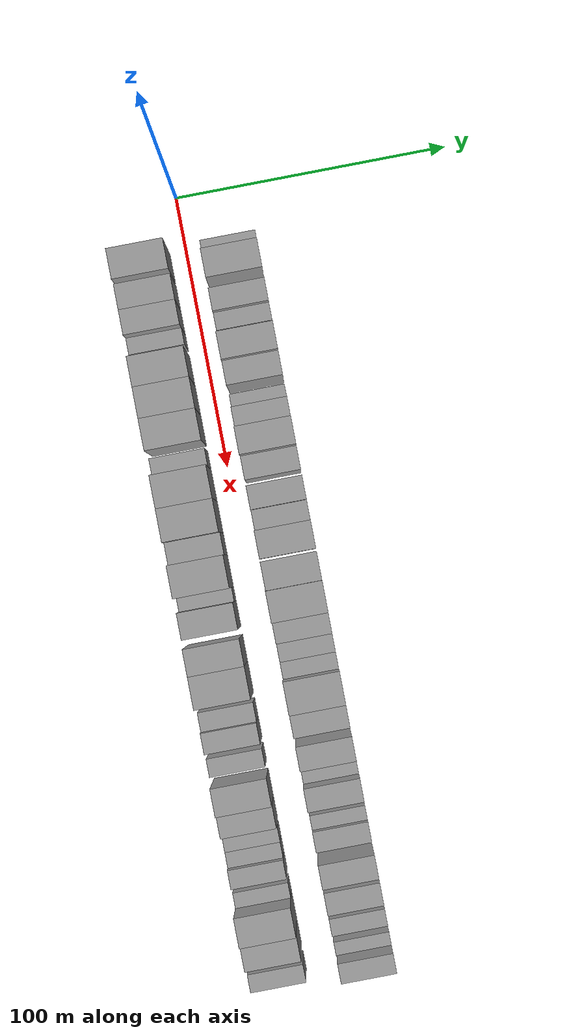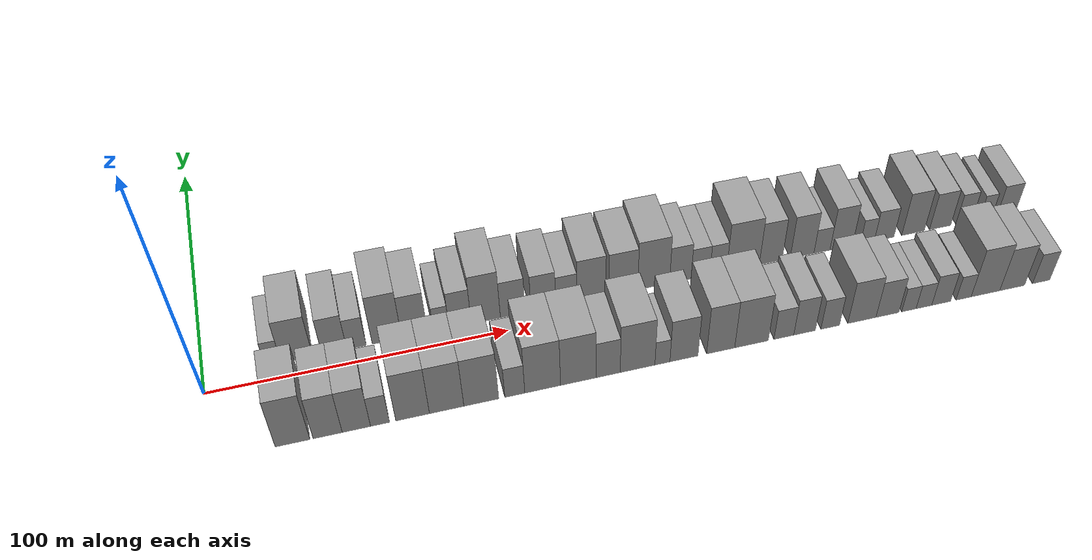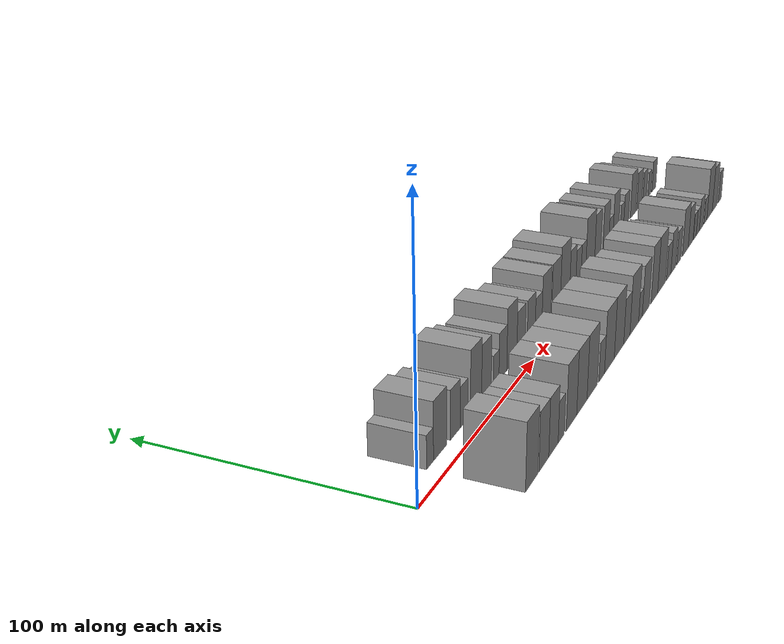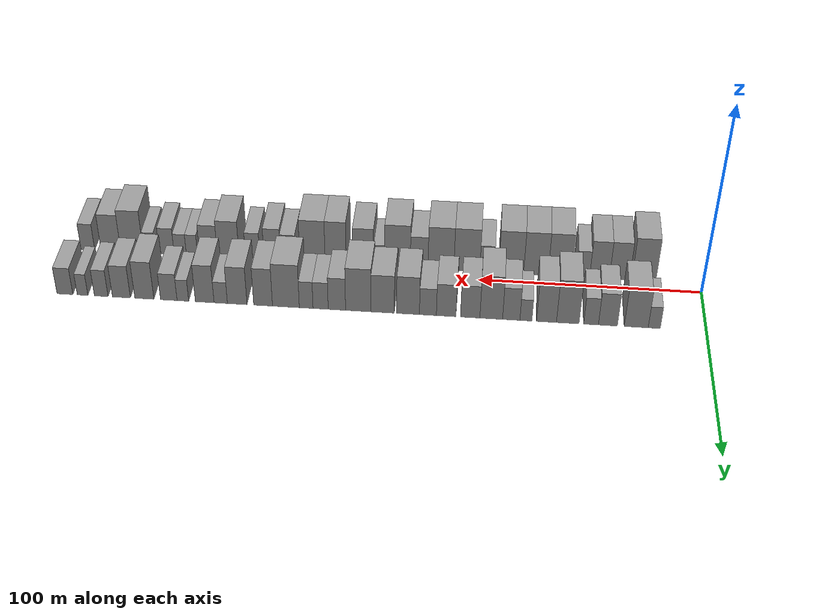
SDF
<sdf version="1.6">
 <world name="default">
  <scene>
   <sky><clouds><speed>12</speed></clouds></sky>
   <ambient>0.4 0.4 0.4 1</ambient>
   <background>0.7 0.7 0.7 1</background>
   <shadows>1</shadows>
  </scene>
  <gravity>0 0 -9.8066</gravity>
  <magnetic_field>6e-06 2.3e-05 -4.2e-05</magnetic_field>
  <physics default="0" name="default_physics" type="ode">
   <ode>
    <solver>
     <type>quick</type>
     <iters>10</iters>
     <sor>1.0</sor>
     <use_dynamic_moi_rescaling>0</use_dynamic_moi_rescaling>
    </solver>
    <constraints>
     <cfm>0</cfm>
     <erp>0.2</erp>
     <contact_max_correcting_vel>100</contact_max_correcting_vel>
     <contact_surface_layer>0.001</contact_surface_layer>
    </constraints>
   </ode>
   <max_step_size>0.004</max_step_size>
   <real_time_factor>1</real_time_factor>
   <real_time_update_rate>250</real_time_update_rate>
  </physics>
  <light name="sun" type="directional">
   <pose>0 0 10 0 0 0</pose>
   <diffuse>0.8 0.8 0.8 1</diffuse>
   <specular>0.2 0.2 0.2 1</specular>
   <attenuation>
    <range>1000</range>
    <constant>0.9</constant>
    <linear>0.01</linear>
    <quadratic>0.001</quadratic>
   </attenuation>
   <direction>-0.5 0.1 -0.9</direction>
  </light>
  <model name="building_1">
   <static>1</static>
   <pose>22.6084 16.0000 0 0.000000 0.000000 1.570796</pose>
   <link name="link">
    <pose>0 0 6.00 0 0 0</pose>
    <collision name="collision"><geometry><box><size>20.0000 5.2167 12.0000</size></box></geometry></collision>
    <visual name="visual">
     <cast_shadows>0</cast_shadows>
     <geometry><box><size>20.0000 5.2167 12.0000</size></box></geometry>
     <material>
      <script>
       <uri>model://grey_wall/materials/scripts</uri>
       <uri>model://grey_wall/materials/textures</uri>
       <name>vrc/grey_wall</name>
      </script>
     </material>
    </visual>
   </link>
  </model>
  <model name="building_2">
   <static>1</static>
   <pose>30.3901 16.0000 0 0.000000 0.000000 1.570796</pose>
   <link name="link">
    <pose>0 0 10.50 0 0 0</pose>
    <collision name="collision"><geometry><box><size>20.0000 10.3469 21.0000</size></box></geometry></collision>
    <visual name="visual">
     <cast_shadows>0</cast_shadows>
     <geometry><box><size>20.0000 10.3469 21.0000</size></box></geometry>
     <material>
      <script>
       <uri>model://grey_wall/materials/scripts</uri>
       <uri>model://grey_wall/materials/textures</uri>
       <name>vrc/grey_wall</name>
      </script>
     </material>
    </visual>
   </link>
  </model>
  <model name="building_3">
   <static>1</static>
   <pose>42.6736 16.0000 0 0.000000 0.000000 1.570796</pose>
   <link name="link">
    <pose>0 0 9.00 0 0 0</pose>
    <collision name="collision"><geometry><box><size>20.0000 8.2200 18.0000</size></box></geometry></collision>
    <visual name="visual">
     <cast_shadows>0</cast_shadows>
     <geometry><box><size>20.0000 8.2200 18.0000</size></box></geometry>
     <material>
      <script>
       <uri>model://grey_wall/materials/scripts</uri>
       <uri>model://grey_wall/materials/textures</uri>
       <name>vrc/grey_wall</name>
      </script>
     </material>
    </visual>
   </link>
  </model>
  <model name="building_4">
   <static>1</static>
   <pose>49.9947 16.0000 0 0.000000 0.000000 1.570796</pose>
   <link name="link">
    <pose>0 0 7.50 0 0 0</pose>
    <collision name="collision"><geometry><box><size>20.0000 6.4224 15.0000</size></box></geometry></collision>
    <visual name="visual">
     <cast_shadows>0</cast_shadows>
     <geometry><box><size>20.0000 6.4224 15.0000</size></box></geometry>
     <material>
      <script>
       <uri>model://grey_wall/materials/scripts</uri>
       <uri>model://grey_wall/materials/textures</uri>
       <name>vrc/grey_wall</name>
      </script>
     </material>
    </visual>
   </link>
  </model>
  <model name="building_5">
   <static>1</static>
   <pose>60.1211 16.0000 0 0.000000 0.000000 1.570796</pose>
   <link name="link">
    <pose>0 0 12.00 0 0 0</pose>
    <collision name="collision"><geometry><box><size>20.0000 9.8304 24.0000</size></box></geometry></collision>
    <visual name="visual">
     <cast_shadows>0</cast_shadows>
     <geometry><box><size>20.0000 9.8304 24.0000</size></box></geometry>
     <material>
      <script>
       <uri>model://grey_wall/materials/scripts</uri>
       <uri>model://grey_wall/materials/textures</uri>
       <name>vrc/grey_wall</name>
      </script>
     </material>
    </visual>
   </link>
  </model>
  <model name="building_6">
   <static>1</static>
   <pose>69.3742 16.0000 0 0.000000 0.000000 1.570796</pose>
   <link name="link">
    <pose>0 0 10.50 0 0 0</pose>
    <collision name="collision"><geometry><box><size>20.0000 8.6758 21.0000</size></box></geometry></collision>
    <visual name="visual">
     <cast_shadows>0</cast_shadows>
     <geometry><box><size>20.0000 8.6758 21.0000</size></box></geometry>
     <material>
      <script>
       <uri>model://grey_wall/materials/scripts</uri>
       <uri>model://grey_wall/materials/textures</uri>
       <name>vrc/grey_wall</name>
      </script>
     </material>
    </visual>
   </link>
  </model>
  <model name="building_7">
   <static>1</static>
   <pose>78.3441 16.0000 0 0.000000 0.000000 1.570796</pose>
   <link name="link">
    <pose>0 0 6.00 0 0 0</pose>
    <collision name="collision"><geometry><box><size>20.0000 5.2640 12.0000</size></box></geometry></collision>
    <visual name="visual">
     <cast_shadows>0</cast_shadows>
     <geometry><box><size>20.0000 5.2640 12.0000</size></box></geometry>
     <material>
      <script>
       <uri>model://grey_wall/materials/scripts</uri>
       <uri>model://grey_wall/materials/textures</uri>
       <name>vrc/grey_wall</name>
      </script>
     </material>
    </visual>
   </link>
  </model>
  <model name="building_8">
   <static>1</static>
   <pose>84.7707 16.0000 0 0.000000 0.000000 1.570796</pose>
   <link name="link">
    <pose>0 0 9.00 0 0 0</pose>
    <collision name="collision"><geometry><box><size>20.0000 7.5891 18.0000</size></box></geometry></collision>
    <visual name="visual">
     <cast_shadows>0</cast_shadows>
     <geometry><box><size>20.0000 7.5891 18.0000</size></box></geometry>
     <material>
      <script>
       <uri>model://grey_wall/materials/scripts</uri>
       <uri>model://grey_wall/materials/textures</uri>
       <name>vrc/grey_wall</name>
      </script>
     </material>
    </visual>
   </link>
  </model>
  <model name="building_9">
   <static>1</static>
   <pose>93.5377 16.0000 0 0.000000 0.000000 1.570796</pose>
   <link name="link">
    <pose>0 0 12.00 0 0 0</pose>
    <collision name="collision"><geometry><box><size>20.0000 9.9450 24.0000</size></box></geometry></collision>
    <visual name="visual">
     <cast_shadows>0</cast_shadows>
     <geometry><box><size>20.0000 9.9450 24.0000</size></box></geometry>
     <material>
      <script>
       <uri>model://grey_wall/materials/scripts</uri>
       <uri>model://grey_wall/materials/textures</uri>
       <name>vrc/grey_wall</name>
      </script>
     </material>
    </visual>
   </link>
  </model>
  <model name="building_10">
   <static>1</static>
   <pose>102.7729 16.0000 0 0.000000 0.000000 1.570796</pose>
   <link name="link">
    <pose>0 0 9.00 0 0 0</pose>
    <collision name="collision"><geometry><box><size>20.0000 8.5254 18.0000</size></box></geometry></collision>
    <visual name="visual">
     <cast_shadows>0</cast_shadows>
     <geometry><box><size>20.0000 8.5254 18.0000</size></box></geometry>
     <material>
      <script>
       <uri>model://grey_wall/materials/scripts</uri>
       <uri>model://grey_wall/materials/textures</uri>
       <name>vrc/grey_wall</name>
      </script>
     </material>
    </visual>
   </link>
  </model>
  <model name="building_11">
   <static>1</static>
   <pose>113.3441 16.0000 0 0.000000 0.000000 1.570796</pose>
   <link name="link">
    <pose>0 0 9.00 0 0 0</pose>
    <collision name="collision"><geometry><box><size>20.0000 8.6171 18.0000</size></box></geometry></collision>
    <visual name="visual">
     <cast_shadows>0</cast_shadows>
     <geometry><box><size>20.0000 8.6171 18.0000</size></box></geometry>
     <material>
      <script>
       <uri>model://grey_wall/materials/scripts</uri>
       <uri>model://grey_wall/materials/textures</uri>
       <name>vrc/grey_wall</name>
      </script>
     </material>
    </visual>
   </link>
  </model>
  <model name="building_12">
   <static>1</static>
   <pose>121.3800 16.0000 0 0.000000 0.000000 1.570796</pose>
   <link name="link">
    <pose>0 0 7.50 0 0 0</pose>
    <collision name="collision"><geometry><box><size>20.0000 7.4546 15.0000</size></box></geometry></collision>
    <visual name="visual">
     <cast_shadows>0</cast_shadows>
     <geometry><box><size>20.0000 7.4546 15.0000</size></box></geometry>
     <material>
      <script>
       <uri>model://grey_wall/materials/scripts</uri>
       <uri>model://grey_wall/materials/textures</uri>
       <name>vrc/grey_wall</name>
      </script>
     </material>
    </visual>
   </link>
  </model>
  <model name="building_13">
   <static>1</static>
   <pose>130.1584 16.0000 0 0.000000 0.000000 1.570796</pose>
   <link name="link">
    <pose>0 0 10.50 0 0 0</pose>
    <collision name="collision"><geometry><box><size>20.0000 10.1021 21.0000</size></box></geometry></collision>
    <visual name="visual">
     <cast_shadows>0</cast_shadows>
     <geometry><box><size>20.0000 10.1021 21.0000</size></box></geometry>
     <material>
      <script>
       <uri>model://grey_wall/materials/scripts</uri>
       <uri>model://grey_wall/materials/textures</uri>
       <name>vrc/grey_wall</name>
      </script>
     </material>
    </visual>
   </link>
  </model>
  <model name="building_14">
   <static>1</static>
   <pose>141.3422 16.0000 0 0.000000 0.000000 1.570796</pose>
   <link name="link">
    <pose>0 0 10.50 0 0 0</pose>
    <collision name="collision"><geometry><box><size>20.0000 10.2656 21.0000</size></box></geometry></collision>
    <visual name="visual">
     <cast_shadows>0</cast_shadows>
     <geometry><box><size>20.0000 10.2656 21.0000</size></box></geometry>
     <material>
      <script>
       <uri>model://grey_wall/materials/scripts</uri>
       <uri>model://grey_wall/materials/textures</uri>
       <name>vrc/grey_wall</name>
      </script>
     </material>
    </visual>
   </link>
  </model>
  <model name="building_15">
   <static>1</static>
   <pose>152.1491 16.0000 0 0.000000 0.000000 1.570796</pose>
   <link name="link">
    <pose>0 0 12.00 0 0 0</pose>
    <collision name="collision"><geometry><box><size>20.0000 11.3482 24.0000</size></box></geometry></collision>
    <visual name="visual">
     <cast_shadows>0</cast_shadows>
     <geometry><box><size>20.0000 11.3482 24.0000</size></box></geometry>
     <material>
      <script>
       <uri>model://grey_wall/materials/scripts</uri>
       <uri>model://grey_wall/materials/textures</uri>
       <name>vrc/grey_wall</name>
      </script>
     </material>
    </visual>
   </link>
  </model>
  <model name="building_16">
   <static>1</static>
   <pose>161.6808 16.0000 0 0.000000 0.000000 1.570796</pose>
   <link name="link">
    <pose>0 0 9.00 0 0 0</pose>
    <collision name="collision"><geometry><box><size>20.0000 7.7151 18.0000</size></box></geometry></collision>
    <visual name="visual">
     <cast_shadows>0</cast_shadows>
     <geometry><box><size>20.0000 7.7151 18.0000</size></box></geometry>
     <material>
      <script>
       <uri>model://grey_wall/materials/scripts</uri>
       <uri>model://grey_wall/materials/textures</uri>
       <name>vrc/grey_wall</name>
      </script>
     </material>
    </visual>
   </link>
  </model>
  <model name="building_17">
   <static>1</static>
   <pose>168.9210 16.0000 0 0.000000 0.000000 1.570796</pose>
   <link name="link">
    <pose>0 0 7.50 0 0 0</pose>
    <collision name="collision"><geometry><box><size>20.0000 6.7653 15.0000</size></box></geometry></collision>
    <visual name="visual">
     <cast_shadows>0</cast_shadows>
     <geometry><box><size>20.0000 6.7653 15.0000</size></box></geometry>
     <material>
      <script>
       <uri>model://grey_wall/materials/scripts</uri>
       <uri>model://grey_wall/materials/textures</uri>
       <name>vrc/grey_wall</name>
      </script>
     </material>
    </visual>
   </link>
  </model>
  <model name="building_18">
   <static>1</static>
   <pose>175.3522 16.0000 0 0.000000 0.000000 1.570796</pose>
   <link name="link">
    <pose>0 0 7.50 0 0 0</pose>
    <collision name="collision"><geometry><box><size>20.0000 6.0972 15.0000</size></box></geometry></collision>
    <visual name="visual">
     <cast_shadows>0</cast_shadows>
     <geometry><box><size>20.0000 6.0972 15.0000</size></box></geometry>
     <material>
      <script>
       <uri>model://grey_wall/materials/scripts</uri>
       <uri>model://grey_wall/materials/textures</uri>
       <name>vrc/grey_wall</name>
      </script>
     </material>
    </visual>
   </link>
  </model>
  <model name="building_19">
   <static>1</static>
   <pose>184.3921 16.0000 0 0.000000 0.000000 1.570796</pose>
   <link name="link">
    <pose>0 0 12.00 0 0 0</pose>
    <collision name="collision"><geometry><box><size>20.0000 11.9827 24.0000</size></box></geometry></collision>
    <visual name="visual">
     <cast_shadows>0</cast_shadows>
     <geometry><box><size>20.0000 11.9827 24.0000</size></box></geometry>
     <material>
      <script>
       <uri>model://grey_wall/materials/scripts</uri>
       <uri>model://grey_wall/materials/textures</uri>
       <name>vrc/grey_wall</name>
      </script>
     </material>
    </visual>
   </link>
  </model>
  <model name="building_20">
   <static>1</static>
   <pose>194.5859 16.0000 0 0.000000 0.000000 1.570796</pose>
   <link name="link">
    <pose>0 0 10.50 0 0 0</pose>
    <collision name="collision"><geometry><box><size>20.0000 8.4049 21.0000</size></box></geometry></collision>
    <visual name="visual">
     <cast_shadows>0</cast_shadows>
     <geometry><box><size>20.0000 8.4049 21.0000</size></box></geometry>
     <material>
      <script>
       <uri>model://grey_wall/materials/scripts</uri>
       <uri>model://grey_wall/materials/textures</uri>
       <name>vrc/grey_wall</name>
      </script>
     </material>
    </visual>
   </link>
  </model>
  <model name="building_21">
   <static>1</static>
   <pose>206.1869 16.0000 0 0.000000 0.000000 1.570796</pose>
   <link name="link">
    <pose>0 0 10.50 0 0 0</pose>
    <collision name="collision"><geometry><box><size>20.0000 8.7970 21.0000</size></box></geometry></collision>
    <visual name="visual">
     <cast_shadows>0</cast_shadows>
     <geometry><box><size>20.0000 8.7970 21.0000</size></box></geometry>
     <material>
      <script>
       <uri>model://grey_wall/materials/scripts</uri>
       <uri>model://grey_wall/materials/textures</uri>
       <name>vrc/grey_wall</name>
      </script>
     </material>
    </visual>
   </link>
  </model>
  <model name="building_22">
   <static>1</static>
   <pose>213.5829 16.0000 0 0.000000 0.000000 1.570796</pose>
   <link name="link">
    <pose>0 0 6.00 0 0 0</pose>
    <collision name="collision"><geometry><box><size>20.0000 5.9951 12.0000</size></box></geometry></collision>
    <visual name="visual">
     <cast_shadows>0</cast_shadows>
     <geometry><box><size>20.0000 5.9951 12.0000</size></box></geometry>
     <material>
      <script>
       <uri>model://grey_wall/materials/scripts</uri>
       <uri>model://grey_wall/materials/textures</uri>
       <name>vrc/grey_wall</name>
      </script>
     </material>
    </visual>
   </link>
  </model>
  <model name="building_23">
   <static>1</static>
   <pose>220.7910 16.0000 0 0.000000 0.000000 1.570796</pose>
   <link name="link">
    <pose>0 0 10.50 0 0 0</pose>
    <collision name="collision"><geometry><box><size>20.0000 8.4211 21.0000</size></box></geometry></collision>
    <visual name="visual">
     <cast_shadows>0</cast_shadows>
     <geometry><box><size>20.0000 8.4211 21.0000</size></box></geometry>
     <material>
      <script>
       <uri>model://grey_wall/materials/scripts</uri>
       <uri>model://grey_wall/materials/textures</uri>
       <name>vrc/grey_wall</name>
      </script>
     </material>
    </visual>
   </link>
  </model>
  <model name="building_24">
   <static>1</static>
   <pose>230.6266 16.0000 0 0.000000 0.000000 1.570796</pose>
   <link name="link">
    <pose>0 0 6.00 0 0 0</pose>
    <collision name="collision"><geometry><box><size>20.0000 5.2502 12.0000</size></box></geometry></collision>
    <visual name="visual">
     <cast_shadows>0</cast_shadows>
     <geometry><box><size>20.0000 5.2502 12.0000</size></box></geometry>
     <material>
      <script>
       <uri>model://grey_wall/materials/scripts</uri>
       <uri>model://grey_wall/materials/textures</uri>
       <name>vrc/grey_wall</name>
      </script>
     </material>
    </visual>
   </link>
  </model>
  <model name="building_25">
   <static>1</static>
   <pose>236.9846 16.0000 0 0.000000 0.000000 1.570796</pose>
   <link name="link">
    <pose>0 0 7.50 0 0 0</pose>
    <collision name="collision"><geometry><box><size>20.0000 7.4658 15.0000</size></box></geometry></collision>
    <visual name="visual">
     <cast_shadows>0</cast_shadows>
     <geometry><box><size>20.0000 7.4658 15.0000</size></box></geometry>
     <material>
      <script>
       <uri>model://grey_wall/materials/scripts</uri>
       <uri>model://grey_wall/materials/textures</uri>
       <name>vrc/grey_wall</name>
      </script>
     </material>
    </visual>
   </link>
  </model>
  <model name="building_26">
   <static>1</static>
   <pose>248.0401 16.0000 0 0.000000 0.000000 1.570796</pose>
   <link name="link">
    <pose>0 0 10.50 0 0 0</pose>
    <collision name="collision"><geometry><box><size>20.0000 8.6451 21.0000</size></box></geometry></collision>
    <visual name="visual">
     <cast_shadows>0</cast_shadows>
     <geometry><box><size>20.0000 8.6451 21.0000</size></box></geometry>
     <material>
      <script>
       <uri>model://grey_wall/materials/scripts</uri>
       <uri>model://grey_wall/materials/textures</uri>
       <name>vrc/grey_wall</name>
      </script>
     </material>
    </visual>
   </link>
  </model>
  <model name="building_27">
   <static>1</static>
   <pose>258.4381 16.0000 0 0.000000 0.000000 1.570796</pose>
   <link name="link">
    <pose>0 0 9.00 0 0 0</pose>
    <collision name="collision"><geometry><box><size>20.0000 8.1509 18.0000</size></box></geometry></collision>
    <visual name="visual">
     <cast_shadows>0</cast_shadows>
     <geometry><box><size>20.0000 8.1509 18.0000</size></box></geometry>
     <material>
      <script>
       <uri>model://grey_wall/materials/scripts</uri>
       <uri>model://grey_wall/materials/textures</uri>
       <name>vrc/grey_wall</name>
      </script>
     </material>
    </visual>
   </link>
  </model>
  <model name="building_28">
   <static>1</static>
   <pose>267.6070 16.0000 0 0.000000 0.000000 1.570796</pose>
   <link name="link">
    <pose>0 0 7.50 0 0 0</pose>
    <collision name="collision"><geometry><box><size>20.0000 6.1869 15.0000</size></box></geometry></collision>
    <visual name="visual">
     <cast_shadows>0</cast_shadows>
     <geometry><box><size>20.0000 6.1869 15.0000</size></box></geometry>
     <material>
      <script>
       <uri>model://grey_wall/materials/scripts</uri>
       <uri>model://grey_wall/materials/textures</uri>
       <name>vrc/grey_wall</name>
      </script>
     </material>
    </visual>
   </link>
  </model>
  <model name="building_29">
   <static>1</static>
   <pose>276.1133 16.0000 0 0.000000 0.000000 1.570796</pose>
   <link name="link">
    <pose>0 0 6.00 0 0 0</pose>
    <collision name="collision"><geometry><box><size>20.0000 4.8258 12.0000</size></box></geometry></collision>
    <visual name="visual">
     <cast_shadows>0</cast_shadows>
     <geometry><box><size>20.0000 4.8258 12.0000</size></box></geometry>
     <material>
      <script>
       <uri>model://grey_wall/materials/scripts</uri>
       <uri>model://grey_wall/materials/textures</uri>
       <name>vrc/grey_wall</name>
      </script>
     </material>
    </visual>
   </link>
  </model>
  <model name="building_30">
   <static>1</static>
   <pose>284.1362 16.0000 0 0.000000 0.000000 1.570796</pose>
   <link name="link">
    <pose>0 0 7.50 0 0 0</pose>
    <collision name="collision"><geometry><box><size>20.0000 7.2200 15.0000</size></box></geometry></collision>
    <visual name="visual">
     <cast_shadows>0</cast_shadows>
     <geometry><box><size>20.0000 7.2200 15.0000</size></box></geometry>
     <material>
      <script>
       <uri>model://grey_wall/materials/scripts</uri>
       <uri>model://grey_wall/materials/textures</uri>
       <name>vrc/grey_wall</name>
      </script>
     </material>
    </visual>
   </link>
  </model>
  <model name="building_31">
   <static>1</static>
   <pose>25.3944 -16.0000 0 0.000000 0.000000 1.570796</pose>
   <link name="link">
    <pose>0 0 12.00 0 0 0</pose>
    <collision name="collision"><geometry><box><size>20.0000 10.7888 24.0000</size></box></geometry></collision>
    <visual name="visual">
     <cast_shadows>0</cast_shadows>
     <geometry><box><size>20.0000 10.7888 24.0000</size></box></geometry>
     <material>
      <script>
       <uri>model://grey_wall/materials/scripts</uri>
       <uri>model://grey_wall/materials/textures</uri>
       <name>vrc/grey_wall</name>
      </script>
     </material>
    </visual>
   </link>
  </model>
  <model name="building_32">
   <static>1</static>
   <pose>36.3496 -16.0000 0 0.000000 0.000000 1.570796</pose>
   <link name="link">
    <pose>0 0 10.50 0 0 0</pose>
    <collision name="collision"><geometry><box><size>20.0000 9.1216 21.0000</size></box></geometry></collision>
    <visual name="visual">
     <cast_shadows>0</cast_shadows>
     <geometry><box><size>20.0000 9.1216 21.0000</size></box></geometry>
     <material>
      <script>
       <uri>model://grey_wall/materials/scripts</uri>
       <uri>model://grey_wall/materials/textures</uri>
       <name>vrc/grey_wall</name>
      </script>
     </material>
    </visual>
   </link>
  </model>
  <model name="building_33">
   <static>1</static>
   <pose>45.3806 -16.0000 0 0.000000 0.000000 1.570796</pose>
   <link name="link">
    <pose>0 0 10.50 0 0 0</pose>
    <collision name="collision"><geometry><box><size>20.0000 8.9404 21.0000</size></box></geometry></collision>
    <visual name="visual">
     <cast_shadows>0</cast_shadows>
     <geometry><box><size>20.0000 8.9404 21.0000</size></box></geometry>
     <material>
      <script>
       <uri>model://grey_wall/materials/scripts</uri>
       <uri>model://grey_wall/materials/textures</uri>
       <name>vrc/grey_wall</name>
      </script>
     </material>
    </visual>
   </link>
  </model>
  <model name="building_34">
   <static>1</static>
   <pose>52.8596 -16.0000 0 0.000000 0.000000 1.570796</pose>
   <link name="link">
    <pose>0 0 7.50 0 0 0</pose>
    <collision name="collision"><geometry><box><size>20.0000 6.0176 15.0000</size></box></geometry></collision>
    <visual name="visual">
     <cast_shadows>0</cast_shadows>
     <geometry><box><size>20.0000 6.0176 15.0000</size></box></geometry>
     <material>
      <script>
       <uri>model://grey_wall/materials/scripts</uri>
       <uri>model://grey_wall/materials/textures</uri>
       <name>vrc/grey_wall</name>
      </script>
     </material>
    </visual>
   </link>
  </model>
  <model name="building_35">
   <static>1</static>
   <pose>63.2559 -16.0000 0 0.000000 0.000000 1.570796</pose>
   <link name="link">
    <pose>0 0 12.00 0 0 0</pose>
    <collision name="collision"><geometry><box><size>20.0000 10.7749 24.0000</size></box></geometry></collision>
    <visual name="visual">
     <cast_shadows>0</cast_shadows>
     <geometry><box><size>20.0000 10.7749 24.0000</size></box></geometry>
     <material>
      <script>
       <uri>model://grey_wall/materials/scripts</uri>
       <uri>model://grey_wall/materials/textures</uri>
       <name>vrc/grey_wall</name>
      </script>
     </material>
    </visual>
   </link>
  </model>
  <model name="building_36">
   <static>1</static>
   <pose>74.1902 -16.0000 0 0.000000 0.000000 1.570796</pose>
   <link name="link">
    <pose>0 0 12.00 0 0 0</pose>
    <collision name="collision"><geometry><box><size>20.0000 11.0937 24.0000</size></box></geometry></collision>
    <visual name="visual">
     <cast_shadows>0</cast_shadows>
     <geometry><box><size>20.0000 11.0937 24.0000</size></box></geometry>
     <material>
      <script>
       <uri>model://grey_wall/materials/scripts</uri>
       <uri>model://grey_wall/materials/textures</uri>
       <name>vrc/grey_wall</name>
      </script>
     </material>
    </visual>
   </link>
  </model>
  <model name="building_37">
   <static>1</static>
   <pose>85.4095 -16.0000 0 0.000000 0.000000 1.570796</pose>
   <link name="link">
    <pose>0 0 12.00 0 0 0</pose>
    <collision name="collision"><geometry><box><size>20.0000 11.3449 24.0000</size></box></geometry></collision>
    <visual name="visual">
     <cast_shadows>0</cast_shadows>
     <geometry><box><size>20.0000 11.3449 24.0000</size></box></geometry>
     <material>
      <script>
       <uri>model://grey_wall/materials/scripts</uri>
       <uri>model://grey_wall/materials/textures</uri>
       <name>vrc/grey_wall</name>
      </script>
     </material>
    </visual>
   </link>
  </model>
  <model name="building_38">
   <static>1</static>
   <pose>96.3574 -16.0000 0 0.000000 0.000000 1.570796</pose>
   <link name="link">
    <pose>0 0 7.50 0 0 0</pose>
    <collision name="collision"><geometry><box><size>20.0000 6.5510 15.0000</size></box></geometry></collision>
    <visual name="visual">
     <cast_shadows>0</cast_shadows>
     <geometry><box><size>20.0000 6.5510 15.0000</size></box></geometry>
     <material>
      <script>
       <uri>model://grey_wall/materials/scripts</uri>
       <uri>model://grey_wall/materials/textures</uri>
       <name>vrc/grey_wall</name>
      </script>
     </material>
    </visual>
   </link>
  </model>
  <model name="building_39">
   <static>1</static>
   <pose>105.5496 -16.0000 0 0.000000 0.000000 1.570796</pose>
   <link name="link">
    <pose>0 0 12.00 0 0 0</pose>
    <collision name="collision"><geometry><box><size>20.0000 11.8333 24.0000</size></box></geometry></collision>
    <visual name="visual">
     <cast_shadows>0</cast_shadows>
     <geometry><box><size>20.0000 11.8333 24.0000</size></box></geometry>
     <material>
      <script>
       <uri>model://grey_wall/materials/scripts</uri>
       <uri>model://grey_wall/materials/textures</uri>
       <name>vrc/grey_wall</name>
      </script>
     </material>
    </visual>
   </link>
  </model>
  <model name="building_40">
   <static>1</static>
   <pose>117.3937 -16.0000 0 0.000000 0.000000 1.570796</pose>
   <link name="link">
    <pose>0 0 12.00 0 0 0</pose>
    <collision name="collision"><geometry><box><size>20.0000 11.8549 24.0000</size></box></geometry></collision>
    <visual name="visual">
     <cast_shadows>0</cast_shadows>
     <geometry><box><size>20.0000 11.8549 24.0000</size></box></geometry>
     <material>
      <script>
       <uri>model://grey_wall/materials/scripts</uri>
       <uri>model://grey_wall/materials/textures</uri>
       <name>vrc/grey_wall</name>
      </script>
     </material>
    </visual>
   </link>
  </model>
  <model name="building_41">
   <static>1</static>
   <pose>127.3643 -16.0000 0 0.000000 0.000000 1.570796</pose>
   <link name="link">
    <pose>0 0 9.00 0 0 0</pose>
    <collision name="collision"><geometry><box><size>20.0000 8.0865 18.0000</size></box></geometry></collision>
    <visual name="visual">
     <cast_shadows>0</cast_shadows>
     <geometry><box><size>20.0000 8.0865 18.0000</size></box></geometry>
     <material>
      <script>
       <uri>model://grey_wall/materials/scripts</uri>
       <uri>model://grey_wall/materials/textures</uri>
       <name>vrc/grey_wall</name>
      </script>
     </material>
    </visual>
   </link>
  </model>
  <model name="building_42">
   <static>1</static>
   <pose>137.2837 -16.0000 0 0.000000 0.000000 1.570796</pose>
   <link name="link">
    <pose>0 0 12.00 0 0 0</pose>
    <collision name="collision"><geometry><box><size>20.0000 11.7522 24.0000</size></box></geometry></collision>
    <visual name="visual">
     <cast_shadows>0</cast_shadows>
     <geometry><box><size>20.0000 11.7522 24.0000</size></box></geometry>
     <material>
      <script>
       <uri>model://grey_wall/materials/scripts</uri>
       <uri>model://grey_wall/materials/textures</uri>
       <name>vrc/grey_wall</name>
      </script>
     </material>
    </visual>
   </link>
  </model>
  <model name="building_43">
   <static>1</static>
   <pose>145.7205 -16.0000 0 0.000000 0.000000 1.570796</pose>
   <link name="link">
    <pose>0 0 6.00 0 0 0</pose>
    <collision name="collision"><geometry><box><size>20.0000 5.1215 12.0000</size></box></geometry></collision>
    <visual name="visual">
     <cast_shadows>0</cast_shadows>
     <geometry><box><size>20.0000 5.1215 12.0000</size></box></geometry>
     <material>
      <script>
       <uri>model://grey_wall/materials/scripts</uri>
       <uri>model://grey_wall/materials/textures</uri>
       <name>vrc/grey_wall</name>
      </script>
     </material>
    </visual>
   </link>
  </model>
  <model name="building_44">
   <static>1</static>
   <pose>153.0880 -16.0000 0 0.000000 0.000000 1.570796</pose>
   <link name="link">
    <pose>0 0 10.50 0 0 0</pose>
    <collision name="collision"><geometry><box><size>20.0000 9.6135 21.0000</size></box></geometry></collision>
    <visual name="visual">
     <cast_shadows>0</cast_shadows>
     <geometry><box><size>20.0000 9.6135 21.0000</size></box></geometry>
     <material>
      <script>
       <uri>model://grey_wall/materials/scripts</uri>
       <uri>model://grey_wall/materials/textures</uri>
       <name>vrc/grey_wall</name>
      </script>
     </material>
    </visual>
   </link>
  </model>
  <model name="building_45">
   <static>1</static>
   <pose>165.7497 -16.0000 0 0.000000 0.000000 1.570796</pose>
   <link name="link">
    <pose>0 0 12.00 0 0 0</pose>
    <collision name="collision"><geometry><box><size>20.0000 9.7098 24.0000</size></box></geometry></collision>
    <visual name="visual">
     <cast_shadows>0</cast_shadows>
     <geometry><box><size>20.0000 9.7098 24.0000</size></box></geometry>
     <material>
      <script>
       <uri>model://grey_wall/materials/scripts</uri>
       <uri>model://grey_wall/materials/textures</uri>
       <name>vrc/grey_wall</name>
      </script>
     </material>
    </visual>
   </link>
  </model>
  <model name="building_46">
   <static>1</static>
   <pose>176.4612 -16.0000 0 0.000000 0.000000 1.570796</pose>
   <link name="link">
    <pose>0 0 12.00 0 0 0</pose>
    <collision name="collision"><geometry><box><size>20.0000 11.7132 24.0000</size></box></geometry></collision>
    <visual name="visual">
     <cast_shadows>0</cast_shadows>
     <geometry><box><size>20.0000 11.7132 24.0000</size></box></geometry>
     <material>
      <script>
       <uri>model://grey_wall/materials/scripts</uri>
       <uri>model://grey_wall/materials/textures</uri>
       <name>vrc/grey_wall</name>
      </script>
     </material>
    </visual>
   </link>
  </model>
  <model name="building_47">
   <static>1</static>
   <pose>187.8046 -16.0000 0 0.000000 0.000000 1.570796</pose>
   <link name="link">
    <pose>0 0 7.50 0 0 0</pose>
    <collision name="collision"><geometry><box><size>20.0000 6.9735 15.0000</size></box></geometry></collision>
    <visual name="visual">
     <cast_shadows>0</cast_shadows>
     <geometry><box><size>20.0000 6.9735 15.0000</size></box></geometry>
     <material>
      <script>
       <uri>model://grey_wall/materials/scripts</uri>
       <uri>model://grey_wall/materials/textures</uri>
       <name>vrc/grey_wall</name>
      </script>
     </material>
    </visual>
   </link>
  </model>
  <model name="building_48">
   <static>1</static>
   <pose>195.1028 -16.0000 0 0.000000 0.000000 1.570796</pose>
   <link name="link">
    <pose>0 0 9.00 0 0 0</pose>
    <collision name="collision"><geometry><box><size>20.0000 7.6230 18.0000</size></box></geometry></collision>
    <visual name="visual">
     <cast_shadows>0</cast_shadows>
     <geometry><box><size>20.0000 7.6230 18.0000</size></box></geometry>
     <material>
      <script>
       <uri>model://grey_wall/materials/scripts</uri>
       <uri>model://grey_wall/materials/textures</uri>
       <name>vrc/grey_wall</name>
      </script>
     </material>
    </visual>
   </link>
  </model>
  <model name="building_49">
   <static>1</static>
   <pose>204.2208 -16.0000 0 0.000000 0.000000 1.570796</pose>
   <link name="link">
    <pose>0 0 7.50 0 0 0</pose>
    <collision name="collision"><geometry><box><size>20.0000 6.6130 15.0000</size></box></geometry></collision>
    <visual name="visual">
     <cast_shadows>0</cast_shadows>
     <geometry><box><size>20.0000 6.6130 15.0000</size></box></geometry>
     <material>
      <script>
       <uri>model://grey_wall/materials/scripts</uri>
       <uri>model://grey_wall/materials/textures</uri>
       <name>vrc/grey_wall</name>
      </script>
     </material>
    </visual>
   </link>
  </model>
  <model name="building_50">
   <static>1</static>
   <pose>215.5795 -16.0000 0 0.000000 0.000000 1.570796</pose>
   <link name="link">
    <pose>0 0 10.50 0 0 0</pose>
    <collision name="collision"><geometry><box><size>20.0000 10.1043 21.0000</size></box></geometry></collision>
    <visual name="visual">
     <cast_shadows>0</cast_shadows>
     <geometry><box><size>20.0000 10.1043 21.0000</size></box></geometry>
     <material>
      <script>
       <uri>model://grey_wall/materials/scripts</uri>
       <uri>model://grey_wall/materials/textures</uri>
       <name>vrc/grey_wall</name>
      </script>
     </material>
    </visual>
   </link>
  </model>
  <model name="building_51">
   <static>1</static>
   <pose>224.7859 -16.0000 0 0.000000 0.000000 1.570796</pose>
   <link name="link">
    <pose>0 0 9.00 0 0 0</pose>
    <collision name="collision"><geometry><box><size>20.0000 8.3085 18.0000</size></box></geometry></collision>
    <visual name="visual">
     <cast_shadows>0</cast_shadows>
     <geometry><box><size>20.0000 8.3085 18.0000</size></box></geometry>
     <material>
      <script>
       <uri>model://grey_wall/materials/scripts</uri>
       <uri>model://grey_wall/materials/textures</uri>
       <name>vrc/grey_wall</name>
      </script>
     </material>
    </visual>
   </link>
  </model>
  <model name="building_52">
   <static>1</static>
   <pose>232.5579 -16.0000 0 0.000000 0.000000 1.570796</pose>
   <link name="link">
    <pose>0 0 6.00 0 0 0</pose>
    <collision name="collision"><geometry><box><size>20.0000 5.2355 12.0000</size></box></geometry></collision>
    <visual name="visual">
     <cast_shadows>0</cast_shadows>
     <geometry><box><size>20.0000 5.2355 12.0000</size></box></geometry>
     <material>
      <script>
       <uri>model://grey_wall/materials/scripts</uri>
       <uri>model://grey_wall/materials/textures</uri>
       <name>vrc/grey_wall</name>
      </script>
     </material>
    </visual>
   </link>
  </model>
  <model name="building_53">
   <static>1</static>
   <pose>238.0407 -16.0000 0 0.000000 0.000000 1.570796</pose>
   <link name="link">
    <pose>0 0 6.00 0 0 0</pose>
    <collision name="collision"><geometry><box><size>20.0000 5.7300 12.0000</size></box></geometry></collision>
    <visual name="visual">
     <cast_shadows>0</cast_shadows>
     <geometry><box><size>20.0000 5.7300 12.0000</size></box></geometry>
     <material>
      <script>
       <uri>model://grey_wall/materials/scripts</uri>
       <uri>model://grey_wall/materials/textures</uri>
       <name>vrc/grey_wall</name>
      </script>
     </material>
    </visual>
   </link>
  </model>
  <model name="building_54">
   <static>1</static>
   <pose>244.3657 -16.0000 0 0.000000 0.000000 1.570796</pose>
   <link name="link">
    <pose>0 0 7.50 0 0 0</pose>
    <collision name="collision"><geometry><box><size>20.0000 6.9201 15.0000</size></box></geometry></collision>
    <visual name="visual">
     <cast_shadows>0</cast_shadows>
     <geometry><box><size>20.0000 6.9201 15.0000</size></box></geometry>
     <material>
      <script>
       <uri>model://grey_wall/materials/scripts</uri>
       <uri>model://grey_wall/materials/textures</uri>
       <name>vrc/grey_wall</name>
      </script>
     </material>
    </visual>
   </link>
  </model>
  <model name="building_55">
   <static>1</static>
   <pose>252.6125 -16.0000 0 0.000000 0.000000 1.570796</pose>
   <link name="link">
    <pose>0 0 6.00 0 0 0</pose>
    <collision name="collision"><geometry><box><size>20.0000 5.5735 12.0000</size></box></geometry></collision>
    <visual name="visual">
     <cast_shadows>0</cast_shadows>
     <geometry><box><size>20.0000 5.5735 12.0000</size></box></geometry>
     <material>
      <script>
       <uri>model://grey_wall/materials/scripts</uri>
       <uri>model://grey_wall/materials/textures</uri>
       <name>vrc/grey_wall</name>
      </script>
     </material>
    </visual>
   </link>
  </model>
  <model name="building_56">
   <static>1</static>
   <pose>260.7164 -16.0000 0 0.000000 0.000000 1.570796</pose>
   <link name="link">
    <pose>0 0 12.00 0 0 0</pose>
    <collision name="collision"><geometry><box><size>20.0000 10.6343 24.0000</size></box></geometry></collision>
    <visual name="visual">
     <cast_shadows>0</cast_shadows>
     <geometry><box><size>20.0000 10.6343 24.0000</size></box></geometry>
     <material>
      <script>
       <uri>model://grey_wall/materials/scripts</uri>
       <uri>model://grey_wall/materials/textures</uri>
       <name>vrc/grey_wall</name>
      </script>
     </material>
    </visual>
   </link>
  </model>
  <model name="building_57">
   <static>1</static>
   <pose>270.6833 -16.0000 0 0.000000 0.000000 1.570796</pose>
   <link name="link">
    <pose>0 0 10.50 0 0 0</pose>
    <collision name="collision"><geometry><box><size>20.0000 9.2994 21.0000</size></box></geometry></collision>
    <visual name="visual">
     <cast_shadows>0</cast_shadows>
     <geometry><box><size>20.0000 9.2994 21.0000</size></box></geometry>
     <material>
      <script>
       <uri>model://grey_wall/materials/scripts</uri>
       <uri>model://grey_wall/materials/textures</uri>
       <name>vrc/grey_wall</name>
      </script>
     </material>
    </visual>
   </link>
  </model>
  <model name="building_58">
   <static>1</static>
   <pose>281.5700 -16.0000 0 0.000000 0.000000 1.570796</pose>
   <link name="link">
    <pose>0 0 7.50 0 0 0</pose>
    <collision name="collision"><geometry><box><size>20.0000 6.4740 15.0000</size></box></geometry></collision>
    <visual name="visual">
     <cast_shadows>0</cast_shadows>
     <geometry><box><size>20.0000 6.4740 15.0000</size></box></geometry>
     <material>
      <script>
       <uri>model://grey_wall/materials/scripts</uri>
       <uri>model://grey_wall/materials/textures</uri>
       <name>vrc/grey_wall</name>
      </script>
     </material>
    </visual>
   </link>
  </model>
 </world>
</sdf>
